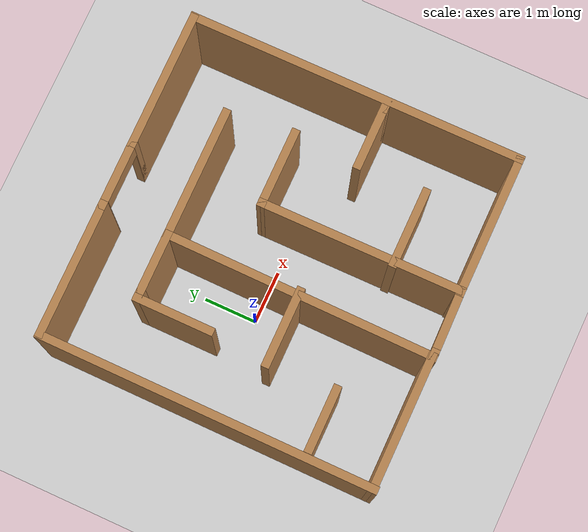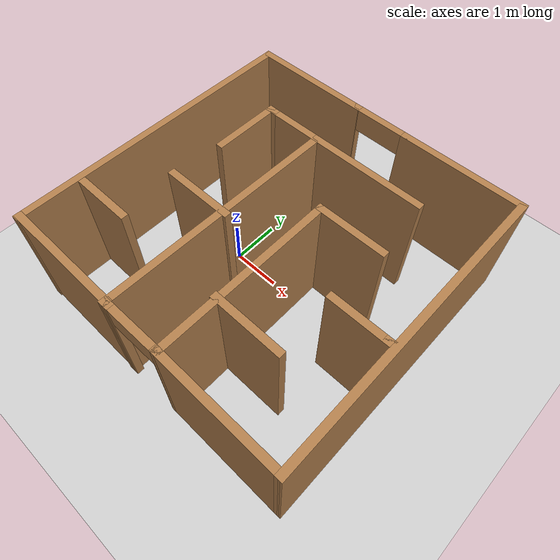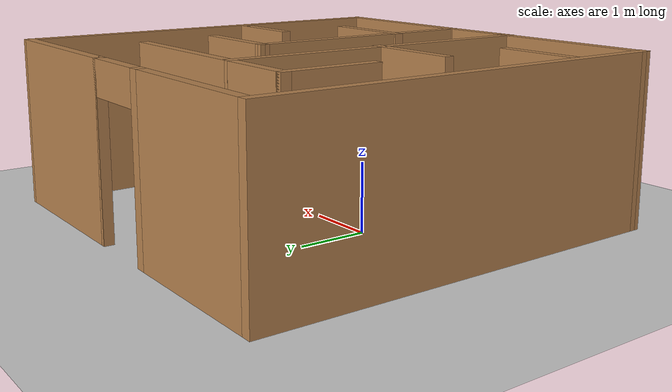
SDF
<sdf version="1.7">
 <world name="default">
  <light name="sun" type="directional">
   <pose>0 0 10 0 -0 0</pose>
   <diffuse>0.8 0.8 0.8 1</diffuse>
   <specular>0.2 0.2 0.2 1</specular>
   <attenuation>
    <range>1000</range>
    <constant>0.9</constant>
    <linear>0.01</linear>
    <quadratic>0.001</quadratic>
   </attenuation>
   <direction>-0.5 0.1 -0.9</direction>
   <spot><inner_angle>0</inner_angle><outer_angle>0</outer_angle><falloff>0</falloff></spot>
  </light>
  <model name="ground_plane">
   <static>1</static>
   <link name="link">
    <collision name="collision">
     <geometry><plane><normal>0 0 1</normal><size>100 100</size></plane></geometry>
     <surface><friction><ode><mu>100</mu><mu2>50</mu2></ode></friction></surface>
    </collision>
    <visual name="visual">
     <cast_shadows>0</cast_shadows>
     <geometry><plane><normal>0 0 1</normal><size>100 100</size></plane></geometry>
     <material>
      <script><uri>file://media/materials/scripts/gazebo.material</uri><name>Gazebo/Grey</name></script>
     </material>
    </visual>
   </link>
  </model>
  <gravity>0 0 -9.8</gravity>
  <magnetic_field>6e-06 2.3e-05 -4.2e-05</magnetic_field>
  <atmosphere type="adiabatic"/>
  <physics type="ode">
   <max_step_size>0.001</max_step_size>
   <real_time_factor>1</real_time_factor>
   <real_time_update_rate>1000</real_time_update_rate>
  </physics>
  <scene><ambient>0.4 0.4 0.4 1</ambient><background>0.7 0.7 0.7 1</background><shadows>1</shadows></scene>
  <audio><device>default</device></audio>
  <spherical_coordinates>
   <surface_model>EARTH_WGS84</surface_model>
   <latitude_deg>0</latitude_deg>
   <longitude_deg>0</longitude_deg>
   <elevation>0</elevation>
   <heading_deg>0</heading_deg>
  </spherical_coordinates>
  <model name="maze.world">
   <pose>1.03801 -0.056134 0 0 -0 0</pose>
   <link name="Wall_1">
    <collision name="Wall_1_Collision">
     <geometry><box><size>2.58045 0.15 2.5</size></box></geometry>
     <pose>0 0 1.25 0 -0 0</pose>
    </collision>
    <visual name="Wall_1_Visual">
     <pose>0 0 1.25 0 -0 0</pose>
     <geometry><box><size>2.58045 0.15 2.5</size></box></geometry>
     <material>
      <script><uri>file://media/materials/scripts/gazebo.material</uri><name>Gazebo/Wood</name></script>
      <ambient>1 1 1 1</ambient>
     </material>
     <meta><layer>0</layer></meta>
    </visual>
    <pose>-1.83301 3.09052 0 0 -0 3.14159</pose>
   </link>
   <link name="Wall_11">
    <collision name="Wall_11_Collision">
     <geometry><box><size>1.5 0.15 2.5</size></box></geometry>
     <pose>0 0 1.25 0 -0 0</pose>
    </collision>
    <visual name="Wall_11_Visual">
     <pose>0 0 1.25 0 -0 0</pose>
     <geometry><box><size>1.5 0.15 2.5</size></box></geometry>
     <material>
      <script><uri>file://media/materials/scripts/gazebo.material</uri><name>Gazebo/Wood</name></script>
      <ambient>1 1 1 1</ambient>
     </material>
     <meta><layer>0</layer></meta>
    </visual>
    <pose>-1.25016 -0.590265 0 0 -0 0</pose>
   </link>
   <link name="Wall_13">
    <collision name="Wall_13_Collision">
     <geometry><box><size>2.5 0.15 2.5</size></box></geometry>
     <pose>0 0 1.25 0 -0 0</pose>
    </collision>
    <visual name="Wall_13_Visual">
     <pose>0 0 1.25 0 -0 0</pose>
     <geometry><box><size>2.5 0.15 2.5</size></box></geometry>
     <material>
      <script><uri>file://media/materials/scripts/gazebo.material</uri><name>Gazebo/Wood</name></script>
      <ambient>1 1 1 1</ambient>
     </material>
     <meta><layer>0</layer></meta>
    </visual>
    <pose>0.557218 1.86063 0 0 -0 0</pose>
   </link>
   <link name="Wall_15">
    <collision name="Wall_15_Collision">
     <geometry><box><size>2.62932 0.15 2.5</size></box></geometry>
     <pose>0 0 1.25 0 -0 0</pose>
    </collision>
    <visual name="Wall_15_Visual">
     <pose>0 0 1.25 0 -0 0</pose>
     <geometry><box><size>2.62932 0.15 2.5</size></box></geometry>
     <material>
      <script><uri>file://media/materials/scripts/gazebo.material</uri><name>Gazebo/Wood</name></script>
      <ambient>1 1 1 1</ambient>
     </material>
     <meta><layer>0</layer></meta>
    </visual>
    <pose>1.80858 3.09052 0 0 -0 0</pose>
   </link>
   <link name="Wall_16">
    <collision name="Wall_16_Collision">
     <geometry><box><size>6.31037 0.15 2.5</size></box></geometry>
     <pose>0 0 1.25 0 -0 0</pose>
    </collision>
    <visual name="Wall_16_Visual">
     <pose>0 0 1.25 0 -0 0</pose>
     <geometry><box><size>6.31037 0.15 2.5</size></box></geometry>
     <material>
      <script><uri>file://media/materials/scripts/gazebo.material</uri><name>Gazebo/Wood</name></script>
      <ambient>1 1 1 1</ambient>
     </material>
     <meta><layer>0</layer></meta>
    </visual>
    <pose>3.07841 0.010348 0 0 -0 -1.56753</pose>
   </link>
   <link name="Wall_17">
    <collision name="Wall_17_Collision">
     <geometry><box><size>2.64943 0.15 2.5</size></box></geometry>
     <pose>0 0 1.25 0 -0 0</pose>
    </collision>
    <visual name="Wall_17_Visual">
     <pose>0 0 1.25 0 -0 0</pose>
     <geometry><box><size>2.64943 0.15 2.5</size></box></geometry>
     <material>
      <script><uri>file://media/materials/scripts/gazebo.material</uri><name>Gazebo/Wood</name></script>
      <ambient>1 1 1 1</ambient>
     </material>
     <meta><layer>0</layer></meta>
    </visual>
    <pose>1.79852 -3.06982 0 0 -0 3.14159</pose>
   </link>
   <link name="Wall_18">
    <collision name="Wall_18_Collision">
     <geometry><box><size>3.85062 0.15 2.5</size></box></geometry>
     <pose>0 0 1.25 0 -0 0</pose>
    </collision>
    <visual name="Wall_18_Visual">
     <pose>0 0 1.25 0 -0 0</pose>
     <geometry><box><size>3.85062 0.15 2.5</size></box></geometry>
     <material>
      <script><uri>file://media/materials/scripts/gazebo.material</uri><name>Gazebo/Wood</name></script>
      <ambient>1 1 1 1</ambient>
     </material>
     <meta><layer>0</layer></meta>
    </visual>
    <pose>0.558862 -1.21954 0 0 -0 1.57623</pose>
   </link>
   <link name="Wall_19">
    <collision name="Wall_19_Collision">
     <geometry><box><size>1.5 0.15 2.5</size></box></geometry>
     <pose>0 0 1.25 0 -0 0</pose>
    </collision>
    <visual name="Wall_19_Visual">
     <pose>0 0 1.25 0 -0 0</pose>
     <geometry><box><size>1.5 0.15 2.5</size></box></geometry>
     <material>
      <script><uri>file://media/materials/scripts/gazebo.material</uri><name>Gazebo/Wood</name></script>
      <ambient>1 1 1 1</ambient>
     </material>
     <meta><layer>0</layer></meta>
    </visual>
    <pose>1.22381 0.630746 0 0 -0 0</pose>
   </link>
   <link name="Wall_2">
    <collision name="Wall_2_Collision">
     <geometry><box><size>6.33127 0.15 2.5</size></box></geometry>
     <pose>0 0 1.25 0 -0 0</pose>
    </collision>
    <visual name="Wall_2_Visual">
     <pose>0 0 1.25 0 -0 0</pose>
     <geometry><box><size>6.33127 0.15 2.5</size></box></geometry>
     <material>
      <script><uri>file://media/materials/scripts/gazebo.material</uri><name>Gazebo/Wood</name></script>
      <ambient>1 1 1 1</ambient>
     </material>
     <meta><layer>0</layer></meta>
    </visual>
    <pose>-3.07841 0.000291 0 0 -0 -1.57405</pose>
   </link>
   <link name="Wall_21">
    <collision name="Wall_21_Collision">
     <geometry><box><size>1.5 0.15 2.5</size></box></geometry>
     <pose>0 0 1.25 0 -0 0</pose>
    </collision>
    <visual name="Wall_21_Visual">
     <pose>0 0 1.25 0 -0 0</pose>
     <geometry><box><size>1.5 0.15 2.5</size></box></geometry>
     <material>
      <script><uri>file://media/materials/scripts/gazebo.material</uri><name>Gazebo/Wood</name></script>
      <ambient>1 1 1 1</ambient>
     </material>
     <meta><layer>0</layer></meta>
    </visual>
    <pose>1.20369 -1.83731 0 0 -0 0</pose>
   </link>
   <link name="Wall_24">
    <collision name="Wall_24_Collision">
     <geometry><box><size>1.25 0.15 2.5</size></box></geometry>
     <pose>0 0 1.25 0 -0 0</pose>
    </collision>
    <visual name="Wall_24_Visual">
     <pose>0 0 1.25 0 -0 0</pose>
     <geometry><box><size>1.25 0.15 2.5</size></box></geometry>
     <material>
      <script><uri>file://media/materials/scripts/gazebo.material</uri><name>Gazebo/Wood</name></script>
      <ambient>1 1 1 1</ambient>
     </material>
     <meta><layer>0</layer></meta>
    </visual>
    <pose>2.38607 -0.590265 0 0 -0 0</pose>
   </link>
   <link name="Wall_25">
    <collision name="Wall_25_Collision">
     <geometry><box><size>0.25 0.15 2.5</size></box></geometry>
     <pose>0 0 1.25 0 -0 0</pose>
    </collision>
    <visual name="Wall_25_Visual">
     <pose>0 0 1.25 0 -0 0</pose>
     <geometry><box><size>0.25 0.15 2.5</size></box></geometry>
     <material>
      <script><uri>file://media/materials/scripts/gazebo.material</uri><name>Gazebo/Wood</name></script>
      <ambient>1 1 1 1</ambient>
     </material>
     <meta><layer>0</layer></meta>
    </visual>
    <pose>2.98607 -0.590265 0 0 -0 0</pose>
   </link>
   <link name="Wall_27">
    <pose>-0.024432 3.09052 0 0 -0 0</pose>
    <visual name="Wall_27_Visual_0">
     <pose>-0.586268 0 1.25 0 -0 0</pose>
     <geometry><box><size>0.164165 0.15 2.5</size></box></geometry>
     <material>
      <script><uri>file://media/materials/scripts/gazebo.material</uri><name>Gazebo/Wood</name></script>
      <ambient>1 1 1 1</ambient>
     </material>
     <meta><layer>0</layer></meta>
    </visual>
    <collision name="Wall_27_Collision_0">
     <geometry><box><size>0.164165 0.15 2.5</size></box></geometry>
     <pose>-0.586268 0 1.25 0 -0 0</pose>
    </collision>
    <visual name="Wall_27_Visual_1">
     <pose>0.602043 0 1.25 0 -0 0</pose>
     <geometry><box><size>0.132615 0.15 2.5</size></box></geometry>
     <material>
      <script><uri>file://media/materials/scripts/gazebo.material</uri><name>Gazebo/Wood</name></script>
      <ambient>1 1 1 1</ambient>
     </material>
     <meta><layer>0</layer></meta>
    </visual>
    <collision name="Wall_27_Collision_1">
     <geometry><box><size>0.132615 0.15 2.5</size></box></geometry>
     <pose>0.602043 0 1.25 0 -0 0</pose>
    </collision>
    <visual name="Wall_27_Visual_2">
     <pose>0.015775 0 2.25 0 -0 0</pose>
     <geometry><box><size>1.03992 0.15 0.5</size></box></geometry>
     <material>
      <script><uri>file://media/materials/scripts/gazebo.material</uri><name>Gazebo/Wood</name></script>
      <ambient>1 1 1 1</ambient>
     </material>
     <meta><layer>0</layer></meta>
    </visual>
    <collision name="Wall_27_Collision_2">
     <geometry><box><size>1.03992 0.15 0.5</size></box></geometry>
     <pose>0.015775 0 2.25 0 -0 0</pose>
    </collision>
   </link>
   <link name="Wall_29">
    <pose>-0.044545 -3.07988 0 0 -0 0.016392</pose>
    <visual name="Wall_29_Visual_0">
     <pose>-0.577705 0 1.25 0 -0 0</pose>
     <geometry><box><size>0.221682 0.15 2.5</size></box></geometry>
     <material>
      <script><uri>file://media/materials/scripts/gazebo.material</uri><name>Gazebo/Wood</name></script>
      <ambient>1 1 1 1</ambient>
     </material>
     <meta><layer>0</layer></meta>
    </visual>
    <collision name="Wall_29_Collision_0">
     <geometry><box><size>0.221682 0.15 2.5</size></box></geometry>
     <pose>-0.577705 0 1.25 0 -0 0</pose>
    </collision>
    <visual name="Wall_29_Visual_1">
     <pose>0.613448 0 1.25 0 -0 0</pose>
     <geometry><box><size>0.150197 0.15 2.5</size></box></geometry>
     <material>
      <script><uri>file://media/materials/scripts/gazebo.material</uri><name>Gazebo/Wood</name></script>
      <ambient>1 1 1 1</ambient>
     </material>
     <meta><layer>0</layer></meta>
    </visual>
    <collision name="Wall_29_Collision_1">
     <geometry><box><size>0.150197 0.15 2.5</size></box></geometry>
     <pose>0.613448 0 1.25 0 -0 0</pose>
    </collision>
    <visual name="Wall_29_Visual_2">
     <pose>0.035742 0 2.25 0 -0 0</pose>
     <geometry><box><size>1.00521 0.15 0.5</size></box></geometry>
     <material>
      <script><uri>file://media/materials/scripts/gazebo.material</uri><name>Gazebo/Wood</name></script>
      <ambient>1 1 1 1</ambient>
     </material>
     <meta><layer>0</layer></meta>
    </visual>
    <collision name="Wall_29_Collision_2">
     <geometry><box><size>1.00521 0.15 0.5</size></box></geometry>
     <pose>0.035742 0 2.25 0 -0 0</pose>
    </collision>
   </link>
   <link name="Wall_3">
    <collision name="Wall_3_Collision">
     <geometry><box><size>2.58045 0.15 2.5</size></box></geometry>
     <pose>0 0 1.25 0 -0 0</pose>
    </collision>
    <visual name="Wall_3_Visual">
     <pose>0 0 1.25 0 -0 0</pose>
     <geometry><box><size>2.58045 0.15 2.5</size></box></geometry>
     <material>
      <script><uri>file://media/materials/scripts/gazebo.material</uri><name>Gazebo/Wood</name></script>
      <ambient>1 1 1 1</ambient>
     </material>
     <meta><layer>0</layer></meta>
    </visual>
    <pose>-1.87324 -3.06982 0 0 -0 0</pose>
   </link>
   <link name="Wall_4">
    <collision name="Wall_4_Collision">
     <geometry><box><size>5.10073 0.15 2.5</size></box></geometry>
     <pose>0 0 1.25 0 -0 0</pose>
    </collision>
    <visual name="Wall_4_Visual">
     <pose>0 0 1.25 0 -0 0</pose>
     <geometry><box><size>5.10073 0.15 2.5</size></box></geometry>
     <material>
      <script><uri>file://media/materials/scripts/gazebo.material</uri><name>Gazebo/Wood</name></script>
      <ambient>1 1 1 1</ambient>
     </material>
     <meta><layer>0</layer></meta>
    </visual>
    <pose>-0.637896 -0.614652 0 0 -0 1.56267</pose>
   </link>
   <link name="Wall_5">
    <collision name="Wall_5_Collision">
     <geometry><box><size>1.25 0.15 2.5</size></box></geometry>
     <pose>0 0 1.25 0 -0 0</pose>
    </collision>
    <visual name="Wall_5_Visual">
     <pose>0 0 1.25 0 -0 0</pose>
     <geometry><box><size>1.25 0.15 2.5</size></box></geometry>
     <material>
      <script><uri>file://media/materials/scripts/gazebo.material</uri><name>Gazebo/Wood</name></script>
      <ambient>1 1 1 1</ambient>
     </material>
     <meta><layer>0</layer></meta>
    </visual>
    <pose>-1.16778 1.86063 0 0 -0 3.14159</pose>
   </link>
   <link name="Wall_6">
    <collision name="Wall_6_Collision">
     <geometry><box><size>0.25 0.15 2.5</size></box></geometry>
     <pose>0 0 1.25 0 -0 0</pose>
    </collision>
    <visual name="Wall_6_Visual">
     <pose>0 0 1.25 0 -0 0</pose>
     <geometry><box><size>0.25 0.15 2.5</size></box></geometry>
     <material>
      <script><uri>file://media/materials/scripts/gazebo.material</uri><name>Gazebo/Wood</name></script>
      <ambient>1 1 1 1</ambient>
     </material>
     <meta><layer>0</layer></meta>
    </visual>
    <pose>-1.76778 1.86063 0 0 -0 3.14159</pose>
   </link>
   <link name="Wall_7">
    <collision name="Wall_7_Collision">
     <geometry><box><size>1.5 0.15 2.5</size></box></geometry>
     <pose>0 0 1.25 0 -0 0</pose>
    </collision>
    <visual name="Wall_7_Visual">
     <pose>0 0 1.25 0 -0 0</pose>
     <geometry><box><size>1.5 0.15 2.5</size></box></geometry>
     <material>
      <script><uri>file://media/materials/scripts/gazebo.material</uri><name>Gazebo/Wood</name></script>
      <ambient>1 1 1 1</ambient>
     </material>
     <meta><layer>0</layer></meta>
    </visual>
    <pose>-1.81778 1.18563 0 0 -0 -1.5708</pose>
   </link>
   <link name="Wall_9">
    <collision name="Wall_9_Collision">
     <geometry><box><size>1.25 0.15 2.5</size></box></geometry>
     <pose>0 0 1.25 0 -0 0</pose>
    </collision>
    <visual name="Wall_9_Visual">
     <pose>0 0 1.25 0 -0 0</pose>
     <geometry><box><size>1.25 0.15 2.5</size></box></geometry>
     <material>
      <script><uri>file://media/materials/scripts/gazebo.material</uri><name>Gazebo/Wood</name></script>
      <ambient>1 1 1 1</ambient>
     </material>
     <meta><layer>0</layer></meta>
    </visual>
    <pose>-2.38084 -1.83731 0 0 -0 0</pose>
   </link>
   <static>1</static>
  </model>
 </world>
</sdf>
